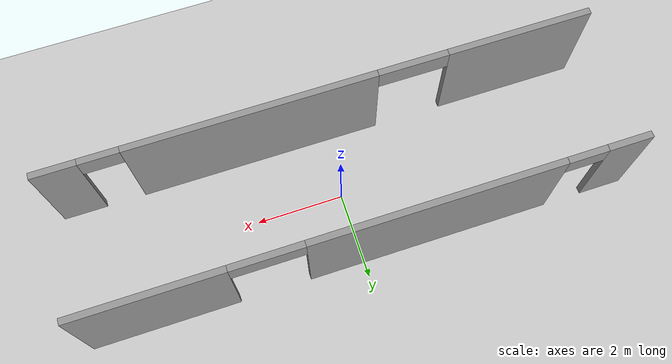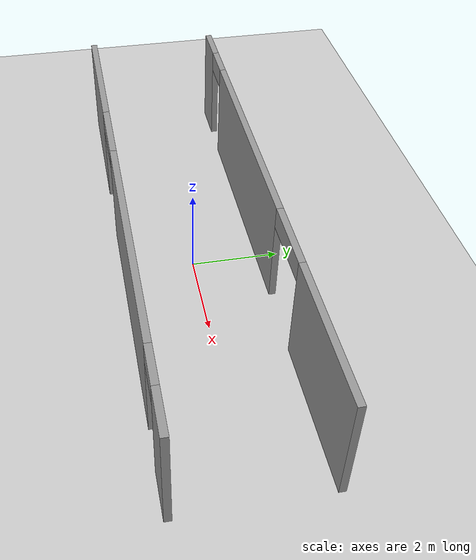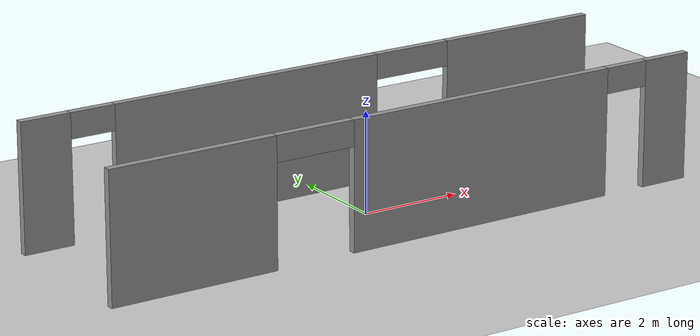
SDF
<sdf version="1.6">
 <world name="default">
  <light name="sun" type="directional">
   <pose>0 0 10 0 -0 0</pose>
   <diffuse>0.8 0.8 0.8 1</diffuse>
   <specular>0.2 0.2 0.2 1</specular>
   <attenuation>
    <range>1000</range>
    <constant>0.9</constant>
    <linear>0.01</linear>
    <quadratic>0.001</quadratic>
   </attenuation>
   <direction>-0.5 0.1 -0.9</direction>
  </light>
  <model name="ground_plane">
   <static>1</static>
   <link name="link">
    <collision name="collision">
     <geometry><plane><normal>0 0 1</normal><size>100 100</size></plane></geometry>
     <surface>
      <contact><collide_bitmask>65535</collide_bitmask></contact>
      <friction><ode><mu>100</mu><mu2>50</mu2></ode></friction>
     </surface>
    </collision>
    <visual name="visual">
     <cast_shadows>0</cast_shadows>
     <geometry><plane><normal>0 0 1</normal><size>100 100</size></plane></geometry>
     <material>
      <script><uri>file://media/materials/scripts/gazebo.material</uri><name>Gazebo/Grey</name></script>
     </material>
    </visual>
   </link>
  </model>
  <gravity>0 0 -9.8</gravity>
  <magnetic_field>6e-06 2.3e-05 -4.2e-05</magnetic_field>
  <atmosphere type="adiabatic"/>
  <physics name="default_physics" default="0" type="ode">
   <max_step_size>0.001</max_step_size>
   <real_time_factor>1</real_time_factor>
   <real_time_update_rate>1000</real_time_update_rate>
  </physics>
  <scene><ambient>0.4 0.4 0.4 1</ambient><background>0.7 0.7 0.7 1</background><shadows>1</shadows></scene>
  <spherical_coordinates>
   <surface_model>EARTH_WGS84</surface_model>
   <latitude_deg>0</latitude_deg>
   <longitude_deg>0</longitude_deg>
   <elevation>0</elevation>
   <heading_deg>0</heading_deg>
  </spherical_coordinates>
  <model name="symetryczne_drzwi">
   <pose>-0.044389 0.470882 0 0 -0 0</pose>
   <link name="Wall_0">
    <pose>0 1.1075 0 0 -0 3.14159</pose>
    <visual name="Wall_0_Visual_0">
     <pose>-4.58355 0 1.25 0 -0 0</pose>
     <geometry><box><size>3.33289 0.15 2.5</size></box></geometry>
     <material>
      <script><uri>file://media/materials/scripts/gazebo.material</uri><name>Gazebo/Grey</name></script>
      <ambient>1 1 1 1</ambient>
     </material>
     <meta><layer>0</layer></meta>
    </visual>
    <collision name="Wall_0_Collision_0">
     <geometry><box><size>3.33289 0.15 2.5</size></box></geometry>
     <pose>-4.58355 0 1.25 0 -0 0</pose>
    </collision>
    <visual name="Wall_0_Visual_1">
     <pose>1.52341 0 1.25 0 -0 0</pose>
     <geometry><box><size>5.65273 0.15 2.5</size></box></geometry>
     <material>
      <script><uri>file://media/materials/scripts/gazebo.material</uri><name>Gazebo/Grey</name></script>
      <ambient>1 1 1 1</ambient>
     </material>
     <meta><layer>0</layer></meta>
    </visual>
    <collision name="Wall_0_Collision_1">
     <geometry><box><size>5.65273 0.15 2.5</size></box></geometry>
     <pose>1.52341 0 1.25 0 -0 0</pose>
    </collision>
    <visual name="Wall_0_Visual_2">
     <pose>5.74989 0 1.25 0 -0 0</pose>
     <geometry><box><size>1.00023 0.15 2.5</size></box></geometry>
     <material>
      <script><uri>file://media/materials/scripts/gazebo.material</uri><name>Gazebo/Grey</name></script>
      <ambient>1 1 1 1</ambient>
     </material>
     <meta><layer>0</layer></meta>
    </visual>
    <collision name="Wall_0_Collision_2">
     <geometry><box><size>1.00023 0.15 2.5</size></box></geometry>
     <pose>5.74989 0 1.25 0 -0 0</pose>
    </collision>
    <visual name="Wall_0_Visual_3">
     <pose>-2.11003 0 2.25 0 -0 0</pose>
     <geometry><box><size>1.61415 0.15 0.5</size></box></geometry>
     <material>
      <script><uri>file://media/materials/scripts/gazebo.material</uri><name>Gazebo/Grey</name></script>
      <ambient>1 1 1 1</ambient>
     </material>
     <meta><layer>0</layer></meta>
    </visual>
    <collision name="Wall_0_Collision_3">
     <geometry><box><size>1.61415 0.15 0.5</size></box></geometry>
     <pose>-2.11003 0 2.25 0 -0 0</pose>
    </collision>
    <visual name="Wall_0_Visual_4">
     <pose>4.79977 0 2.25 0 -0 0</pose>
     <geometry><box><size>0.9 0.15 0.5</size></box></geometry>
     <material>
      <script><uri>file://media/materials/scripts/gazebo.material</uri><name>Gazebo/Grey</name></script>
      <ambient>1 1 1 1</ambient>
     </material>
     <meta><layer>0</layer></meta>
    </visual>
    <collision name="Wall_0_Collision_4">
     <geometry><box><size>0.9 0.15 0.5</size></box></geometry>
     <pose>4.79977 0 2.25 0 -0 0</pose>
    </collision>
   </link>
   <link name="Wall_4">
    <pose>0 -2.0325 0 0 -0 0</pose>
    <visual name="Wall_4_Visual_0">
     <pose>-4.58176 0 1.25 0 -0 0</pose>
     <geometry><box><size>3.33649 0.15 2.5</size></box></geometry>
     <material>
      <script><uri>file://media/materials/scripts/gazebo.material</uri><name>Gazebo/Grey</name></script>
      <ambient>1 1 1 1</ambient>
     </material>
     <meta><layer>0</layer></meta>
    </visual>
    <collision name="Wall_4_Collision_0">
     <geometry><box><size>3.33649 0.15 2.5</size></box></geometry>
     <pose>-4.58176 0 1.25 0 -0 0</pose>
    </collision>
    <visual name="Wall_4_Visual_1">
     <pose>1.52004 0 1.25 0 -0 0</pose>
     <geometry><box><size>5.65794 0.15 2.5</size></box></geometry>
     <material>
      <script><uri>file://media/materials/scripts/gazebo.material</uri><name>Gazebo/Grey</name></script>
      <ambient>1 1 1 1</ambient>
     </material>
     <meta><layer>0</layer></meta>
    </visual>
    <collision name="Wall_4_Collision_1">
     <geometry><box><size>5.65794 0.15 2.5</size></box></geometry>
     <pose>1.52004 0 1.25 0 -0 0</pose>
    </collision>
    <visual name="Wall_4_Visual_2">
     <pose>5.74951 0 1.25 0 -0 0</pose>
     <geometry><box><size>1.00099 0.15 2.5</size></box></geometry>
     <material>
      <script><uri>file://media/materials/scripts/gazebo.material</uri><name>Gazebo/Grey</name></script>
      <ambient>1 1 1 1</ambient>
     </material>
     <meta><layer>0</layer></meta>
    </visual>
    <collision name="Wall_4_Collision_2">
     <geometry><box><size>1.00099 0.15 2.5</size></box></geometry>
     <pose>5.74951 0 1.25 0 -0 0</pose>
    </collision>
    <visual name="Wall_4_Visual_3">
     <pose>-2.11122 0 2.25 0 -0 0</pose>
     <geometry><box><size>1.60458 0.15 0.5</size></box></geometry>
     <material>
      <script><uri>file://media/materials/scripts/gazebo.material</uri><name>Gazebo/Grey</name></script>
      <ambient>1 1 1 1</ambient>
     </material>
     <meta><layer>0</layer></meta>
    </visual>
    <collision name="Wall_4_Collision_3">
     <geometry><box><size>1.60458 0.15 0.5</size></box></geometry>
     <pose>-2.11122 0 2.25 0 -0 0</pose>
    </collision>
    <visual name="Wall_4_Visual_4">
     <pose>4.79901 0 2.25 0 -0 0</pose>
     <geometry><box><size>0.9 0.15 0.5</size></box></geometry>
     <material>
      <script><uri>file://media/materials/scripts/gazebo.material</uri><name>Gazebo/Grey</name></script>
      <ambient>1 1 1 1</ambient>
     </material>
     <meta><layer>0</layer></meta>
    </visual>
    <collision name="Wall_4_Collision_4">
     <geometry><box><size>0.9 0.15 0.5</size></box></geometry>
     <pose>4.79901 0 2.25 0 -0 0</pose>
    </collision>
   </link>
   <static>1</static>
  </model>
 </world>
</sdf>
